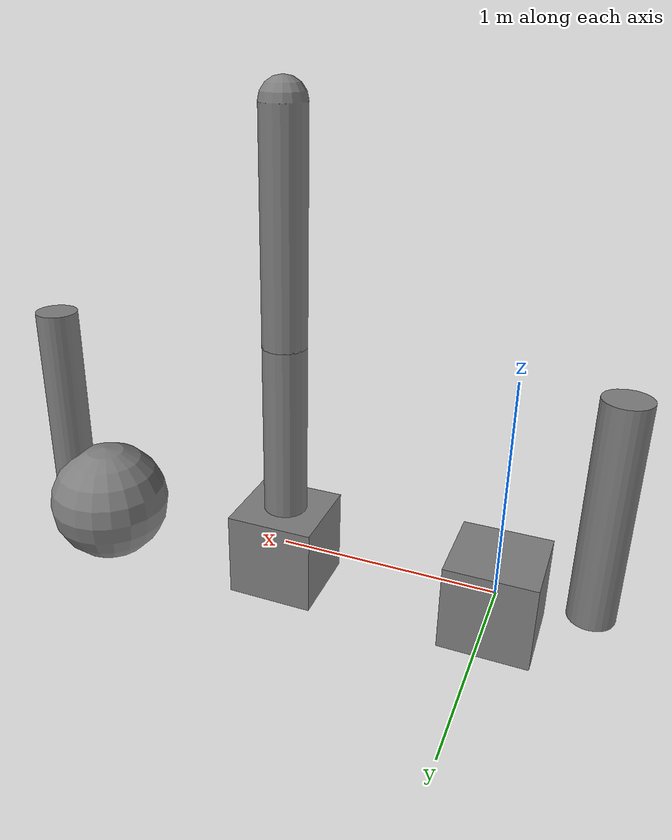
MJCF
<mujoco>
  <custom>
    <numeric name="duration" data="6.5"/>
  </custom>

  <option viscosity="60" gravity="0 0 -1">
    <flag energy="enable" sleep="enable" constraint="disable" contact="disable"/>
  </option>

  <worldbody>
    <body gravcomp="1">
      <geom type="box" size=".2 .2 .2"/>
      <freejoint/>
      <body pos="-.4 0 0" gravcomp="1">
        <geom type="cylinder" size="0.1" fromto="0 0 0 0 0 1"/>
        <joint type="slide" axis="0 0 1" springref="0.2" springdamper="0.1 1"/>
      </body>
    </body>

    <body pos="1 0 0">
      <geom type="box" size=".2 .2 .2"/>
      <body>
        <joint axis="1 0 0" springdamper="0.1 1"/>
        <geom type="capsule" size="0.1" fromto="0 0 0 0 0 1"/>
        <site name="1" pos="0 -.1 .5" size=".03" rgba="1 0 0 1"/>
        <body pos="0 0 1">
          <joint axis="1 0 0" springref="45" springdamper="0.1 1"/>
          <geom type="capsule" size="0.1" fromto="0 0 0 0 0 1"/>
          <site name="2" pos="0 -.1 .5" size=".03" rgba="1 0 0 1"/>
        </body>
      </body>
    </body>

    <body pos="2 0 0">
      <geom size=".3"/>
      <joint type="ball" stiffness="300" damping="30"/>
      <body name="angmom" pos=".2 0 0">
        <geom type="cylinder" size="0.1" fromto="0 0 0 0 0 1"/>
        <joint type="slide" axis="0 0 1" springref="0.2" stiffness="1000" damping="100"/>
      </body>
    </body>
  </worldbody>

  <tendon>
    <spatial width="0.01" armature="1">
      <site site="1"/>
      <site site="2"/>
    </spatial>
  </tendon>

  <sensor>
    <subtreeangmom body="angmom"/>
  </sensor>
</mujoco>
